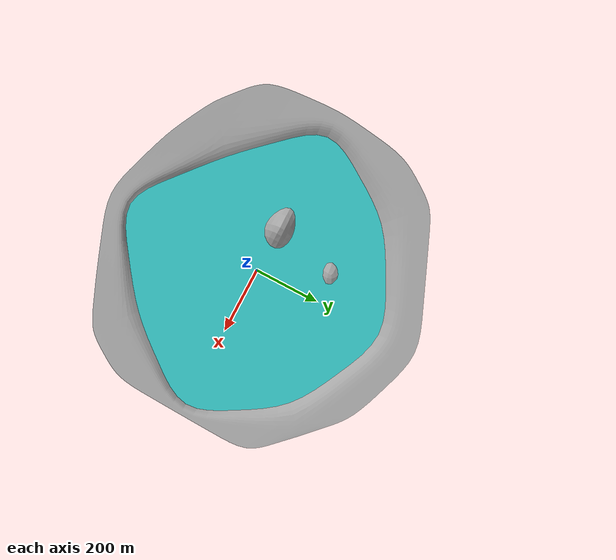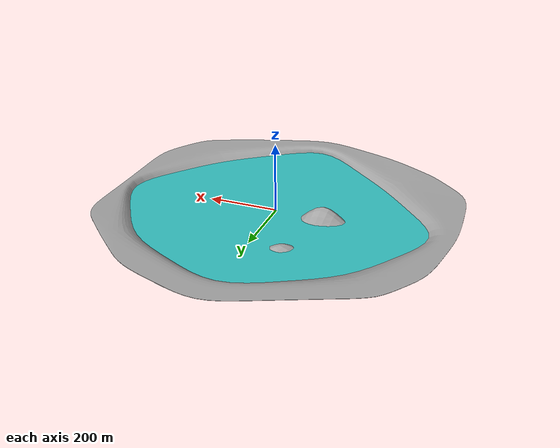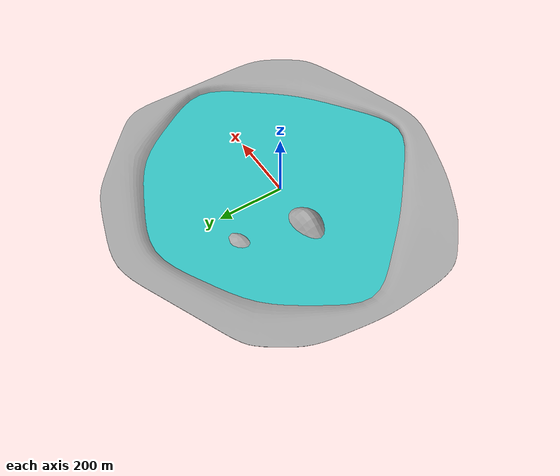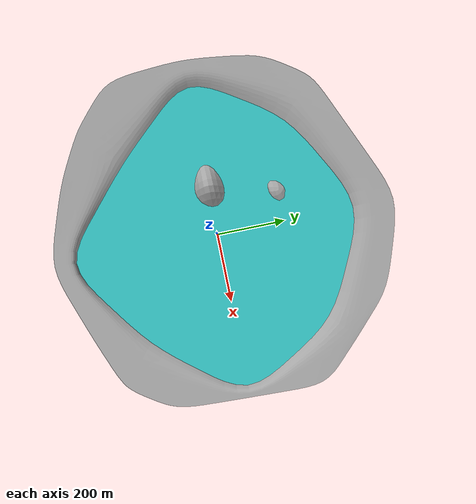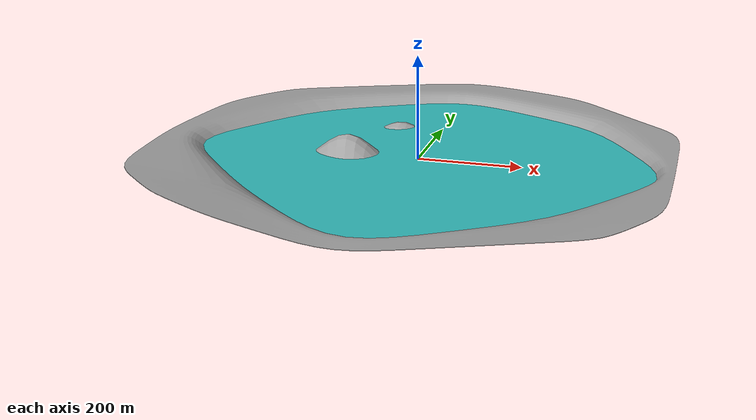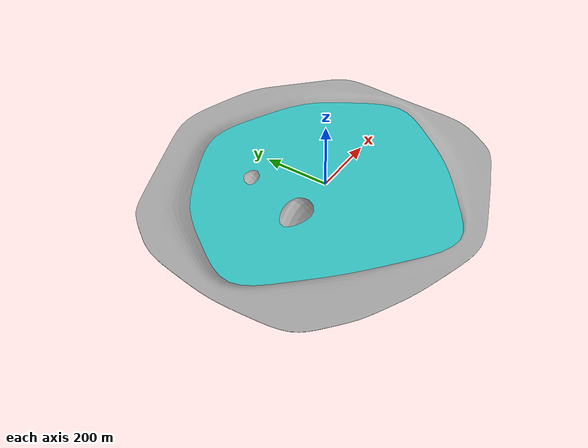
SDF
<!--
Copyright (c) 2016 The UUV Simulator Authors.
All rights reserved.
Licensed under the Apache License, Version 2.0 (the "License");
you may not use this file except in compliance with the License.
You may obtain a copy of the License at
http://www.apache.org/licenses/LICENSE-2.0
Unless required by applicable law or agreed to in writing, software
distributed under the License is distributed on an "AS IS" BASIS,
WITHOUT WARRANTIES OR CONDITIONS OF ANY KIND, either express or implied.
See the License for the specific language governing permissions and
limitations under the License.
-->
<?xml version="1.0" ?>
<sdf version="1.5">
  <world name="lake">
    <physics name="default_physics" default="false" type="ode">
      <max_step_size>0.01</max_step_size>
      <real_time_factor>1</real_time_factor>
      <real_time_update_rate>100</real_time_update_rate>
      <ode>
        <solver>
          <type>quick</type>
          <iters>50</iters>
          <sor>0.5</sor>
        </solver>
      </ode>
    </physics>
    <scene>
      <ambient>0.01 0.01 0.01 1.0</ambient>
      <sky>
        <clouds>
          <speed>12</speed>
        </clouds>
      </sky>
      <shadows>1</shadows>
    </scene>

    <!-- Origin placed somewhere in the middle of the Bodensee (Germany)  -->
    <spherical_coordinates>
      <latitude_deg>47.6278771</latitude_deg>
      <longitude_deg>9.334553</longitude_deg>
    </spherical_coordinates>

      <!-- Global light source -->
    <light type="directional" name="sun1">
      <pose>50 0 150 0 0 0</pose>
      <diffuse>1 1 1 1</diffuse>
      <specular>.1 .1 .1 1</specular>
      <direction>0.3 0.3 -1</direction>
      <cast_shadows>true</cast_shadows>
    </light>

    <!-- Global light source -->

    <!-- Virtual NED frame -->

    <!-- Bounding box with sea surface -->
    <include>
      <uri>model://lake</uri>
      <pose>0 0 0 0 0 0</pose>
    </include>

  </world>
</sdf>

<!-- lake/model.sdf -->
<sdf version="1.4">

<model name="lake">
    <static>true</static>
    <link name="lake_link">
        <visual name="lake_bottom">
            <cast_shadows>false</cast_shadows>
            <pose>0 0 0 0 0 0</pose>
            <geometry>
                <mesh><uri>model://lake/meshes/LakeBottom.dae</uri><scale>1 1 1</scale></mesh>
            </geometry>
            <material>
              <script>
                <uri>file:///home/alex/Documents/rasp_ws/src/sensors/Media/materials/scripts/sand.material</uri>
                <name>UUVSimulator/SandAndStones</name>
              </script>
            </material>
        </visual>

        <collision name="lake_bottom">
            <pose>0 0 0 0 0 0</pose>
            <geometry>
                <mesh><uri>model://lake/meshes/LakeBottom.dae</uri><scale>1 1 1</scale></mesh>
            </geometry>
        </collision>

        <visual name="surface">
            <pose>0 0 0 0 0 0</pose>
            <geometry>
                <mesh><uri>model://lake/meshes/WaterSurface.dae</uri><scale>1 1 1</scale></mesh>
            </geometry>
            <material>
              <script>
                <uri>file:///home/alex/Documents/rasp_ws/src/sensors/Media/materials/scripts/water.material</uri>
                <name>UUVSimulator/StaticTurquoiseWater</name>
              </script>
            </material>
        </visual>
    </link>
</model>

</sdf>
